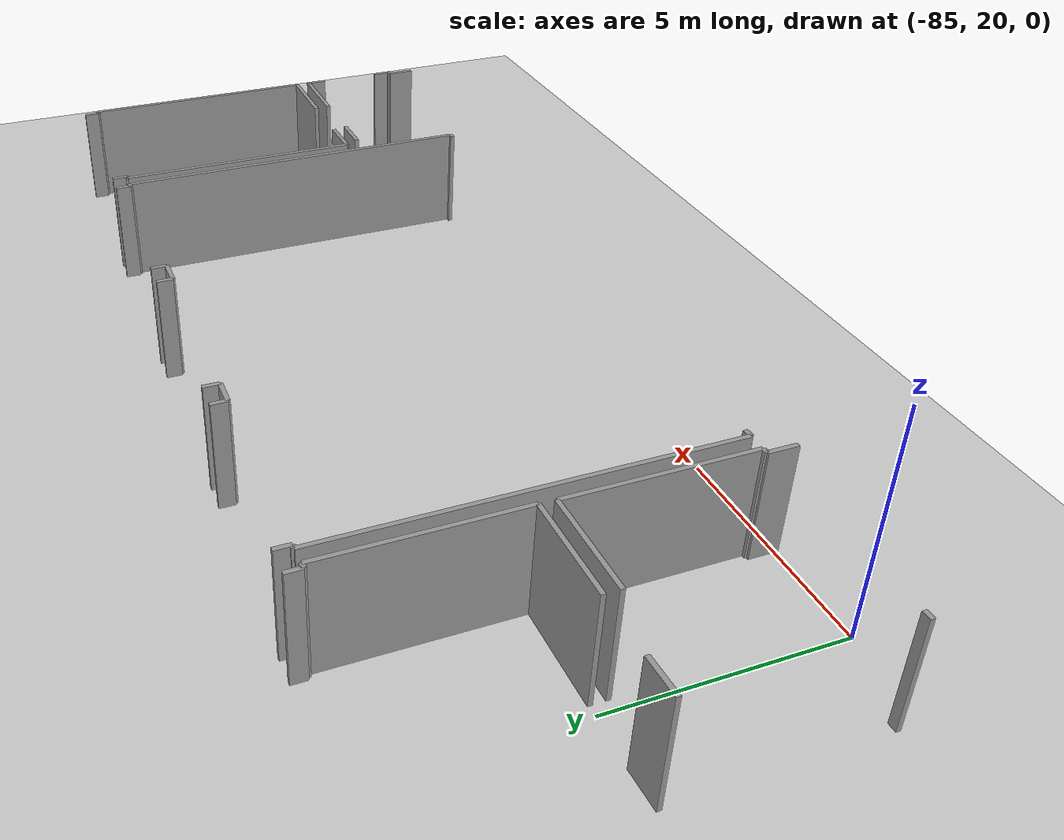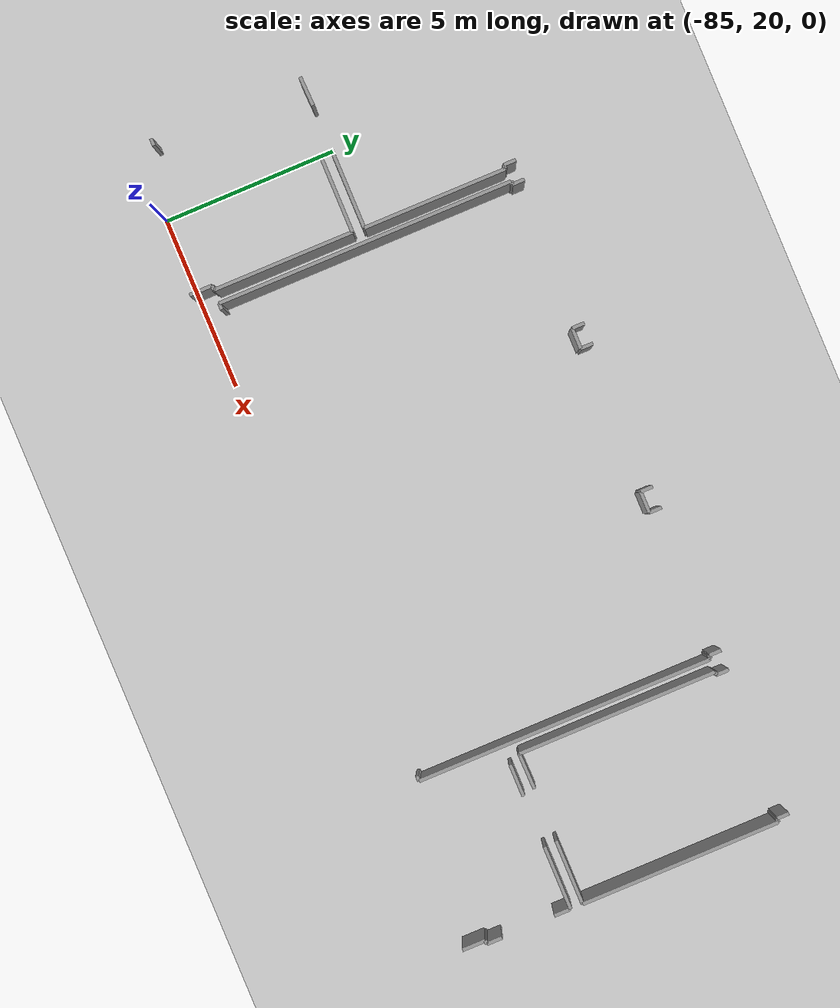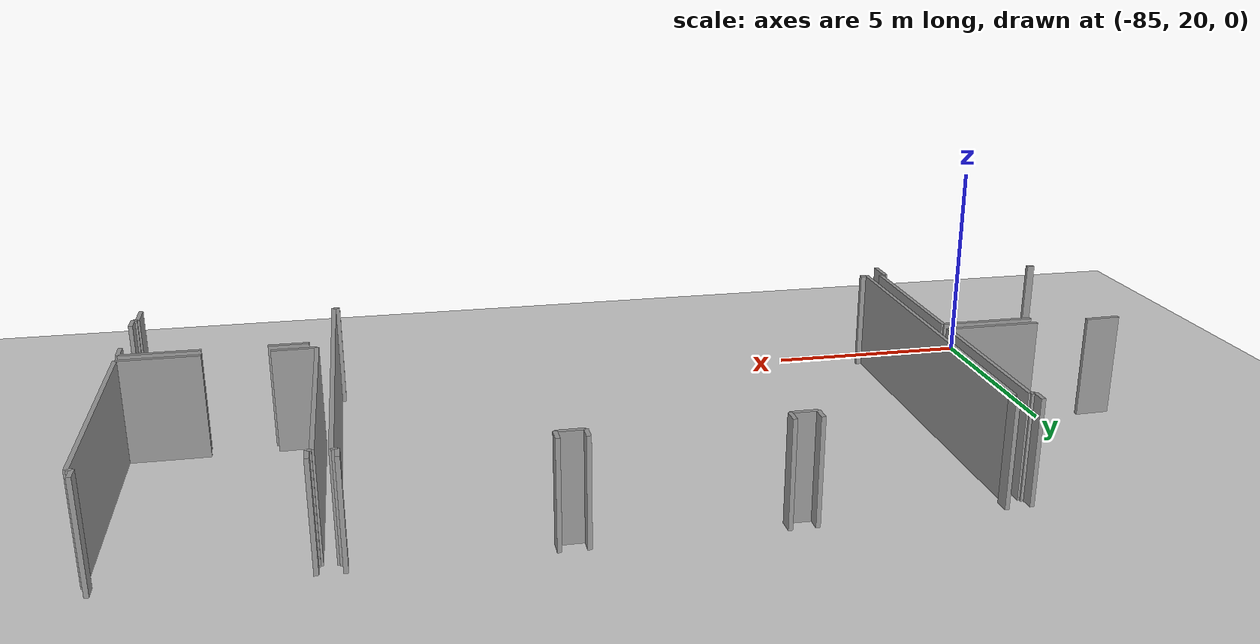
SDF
<sdf version="1.6">
 <world name="default">
  <model name="ground_plane">
   <static>1</static>
   <link name="link">
    <collision name="collision">
     <geometry><plane><normal>0 0 1</normal><size>100 100</size></plane></geometry>
     <surface><friction><ode><mu>100</mu><mu2>50</mu2></ode></friction></surface>
    </collision>
    <visual name="visual">
     <cast_shadows>0</cast_shadows>
     <geometry><plane><normal>0 0 1</normal><size>100 100</size></plane></geometry>
     <material>
      <script><uri>file://media/materials/scripts/gazebo.material</uri><name>Gazebo/Grey</name></script>
     </material>
    </visual>
   </link>
  </model>
  <model name="50010535_PLAN1">
   <static>1</static>
   <link name="Wall_30">
    <collision name="Wall_30_Collision">
     <geometry><box><size>0.348913298984 0.1 2.5</size></box></geometry>
     <pose>0.174456649492 0 1.25 0 0 0</pose>
    </collision>
    <visual name="Wall_30_Visual">
     <pose>0.174456649492 0 1.25 0 0 0</pose>
     <geometry><box><size>0.348913298984 0.1 2.5</size></box></geometry>
     <material>
      <script><uri>file://media/materials/scripts/gazebo.material</uri><name>Gazebo/Grey</name></script>
      <ambient>1 1 1 1</ambient>
     </material>
    </visual>
    <pose>20.00266831 -0.0312573457939 0 0 0 -1.57079632679</pose>
   </link>
   <link name="Wall_31">
    <collision name="Wall_31_Collision">
     <geometry><box><size>0.116389141249 0.1 2.5</size></box></geometry>
     <pose>0.0581945706244 0 1.25 0 0 0</pose>
    </collision>
    <visual name="Wall_31_Visual">
     <pose>0.0581945706244 0 1.25 0 0 0</pose>
     <geometry><box><size>0.116389141249 0.1 2.5</size></box></geometry>
     <material>
      <script><uri>file://media/materials/scripts/gazebo.material</uri><name>Gazebo/Grey</name></script>
      <ambient>1 1 1 1</ambient>
     </material>
    </visual>
    <pose>20.00266831 -0.380170644778 0 0 0 0.0</pose>
   </link>
   <link name="Wall_32">
    <collision name="Wall_32_Collision">
     <geometry><box><size>4.15061974676 0.1 2.5</size></box></geometry>
     <pose>2.07530987338 0 1.25 0 0 0</pose>
    </collision>
    <visual name="Wall_32_Visual">
     <pose>2.07530987338 0 1.25 0 0 0</pose>
     <geometry><box><size>4.15061974676 0.1 2.5</size></box></geometry>
     <material>
      <script><uri>file://media/materials/scripts/gazebo.material</uri><name>Gazebo/Grey</name></script>
      <ambient>1 1 1 1</ambient>
     </material>
    </visual>
    <pose>20.1190574513 -0.380170644778 0 0 0 -1.57079632679</pose>
   </link>
   <link name="Wall_33">
    <collision name="Wall_33_Collision">
     <geometry><box><size>2.28280274201 0.1 2.5</size></box></geometry>
     <pose>1.141401371 0 1.25 0 0 0</pose>
    </collision>
    <visual name="Wall_33_Visual">
     <pose>1.141401371 0 1.25 0 0 0</pose>
     <geometry><box><size>2.28280274201 0.1 2.5</size></box></geometry>
     <material>
      <script><uri>file://media/materials/scripts/gazebo.material</uri><name>Gazebo/Grey</name></script>
      <ambient>1 1 1 1</ambient>
     </material>
    </visual>
    <pose>20.1190574513 -4.53079039154 0 0 0 3.14159265359</pose>
   </link>
   <link name="Wall_34">
    <collision name="Wall_34_Collision">
     <geometry><box><size>0.848680073145 0.1 2.5</size></box></geometry>
     <pose>0.424340036573 0 1.25 0 0 0</pose>
    </collision>
    <visual name="Wall_34_Visual">
     <pose>0.424340036573 0 1.25 0 0 0</pose>
     <geometry><box><size>0.848680073145 0.1 2.5</size></box></geometry>
     <material>
      <script><uri>file://media/materials/scripts/gazebo.material</uri><name>Gazebo/Grey</name></script>
      <ambient>1 1 1 1</ambient>
     </material>
    </visual>
    <pose>16.5231920611 -4.53079039154 0 0 0 -3.11044634803</pose>
   </link>
   <link name="Wall_35">
    <collision name="Wall_35_Collision">
     <geometry><box><size>8.58331797996 0.1 2.5</size></box></geometry>
     <pose>4.29165898998 0 1.25 0 0 0</pose>
    </collision>
    <visual name="Wall_35_Visual">
     <pose>4.29165898998 0 1.25 0 0 0</pose>
     <geometry><box><size>8.58331797996 0.1 2.5</size></box></geometry>
     <material>
      <script><uri>file://media/materials/scripts/gazebo.material</uri><name>Gazebo/Grey</name></script>
      <ambient>1 1 1 1</ambient>
     </material>
    </visual>
    <pose>20.4870301074 -8.95078238661 0 0 0 1.57079632679</pose>
   </link>
   <link name="Wall_36">
    <collision name="Wall_36_Collision">
     <geometry><box><size>0.0930096630941 0.1 2.5</size></box></geometry>
     <pose>0.046504831547 0 1.25 0 0 0</pose>
    </collision>
    <visual name="Wall_36_Visual">
     <pose>0.046504831547 0 1.25 0 0 0</pose>
     <geometry><box><size>0.0930096630941 0.1 2.5</size></box></geometry>
     <material>
      <script><uri>file://media/materials/scripts/gazebo.material</uri><name>Gazebo/Grey</name></script>
      <ambient>1 1 1 1</ambient>
     </material>
    </visual>
    <pose>20.4870301074 -0.36746440665 0 0 0 0.0</pose>
   </link>
   <link name="Wall_37">
    <collision name="Wall_37_Collision">
     <geometry><box><size>0.346880300884 0.1 2.5</size></box></geometry>
     <pose>0.173440150442 0 1.25 0 0 0</pose>
    </collision>
    <visual name="Wall_37_Visual">
     <pose>0.173440150442 0 1.25 0 0 0</pose>
     <geometry><box><size>0.346880300884 0.1 2.5</size></box></geometry>
     <material>
      <script><uri>file://media/materials/scripts/gazebo.material</uri><name>Gazebo/Grey</name></script>
      <ambient>1 1 1 1</ambient>
     </material>
    </visual>
    <pose>20.5800397705 -0.36746440665 0 0 0 1.57079632679</pose>
   </link>
   <link name="Wall_38">
    <collision name="Wall_38_Collision">
     <geometry><box><size>0.358061790436 0.1 2.5</size></box></geometry>
     <pose>0.179030895218 0 1.25 0 0 0</pose>
    </collision>
    <visual name="Wall_38_Visual">
     <pose>0.179030895218 0 1.25 0 0 0</pose>
     <geometry><box><size>0.358061790436 0.1 2.5</size></box></geometry>
     <material>
      <script><uri>file://media/materials/scripts/gazebo.material</uri><name>Gazebo/Grey</name></script>
      <ambient>1 1 1 1</ambient>
     </material>
    </visual>
    <pose>24.8023227003 -0.0205841057667 0 0 0 -1.57079632679</pose>
   </link>
   <link name="Wall_39">
    <collision name="Wall_39_Collision">
     <geometry><box><size>0.596939067235 0.1 2.5</size></box></geometry>
     <pose>0.298469533618 0 1.25 0 0 0</pose>
    </collision>
    <visual name="Wall_39_Visual">
     <pose>0.298469533618 0 1.25 0 0 0</pose>
     <geometry><box><size>0.596939067235 0.1 2.5</size></box></geometry>
     <material>
      <script><uri>file://media/materials/scripts/gazebo.material</uri><name>Gazebo/Grey</name></script>
      <ambient>1 1 1 1</ambient>
     </material>
    </visual>
    <pose>24.8023227003 -0.378645896203 0 0 0 0.0</pose>
   </link>
   <link name="Wall_40">
    <collision name="Wall_40_Collision">
     <geometry><box><size>0.358061790436 0.1 2.5</size></box></geometry>
     <pose>0.179030895218 0 1.25 0 0 0</pose>
    </collision>
    <visual name="Wall_40_Visual">
     <pose>0.179030895218 0 1.25 0 0 0</pose>
     <geometry><box><size>0.358061790436 0.1 2.5</size></box></geometry>
     <material>
      <script><uri>file://media/materials/scripts/gazebo.material</uri><name>Gazebo/Grey</name></script>
      <ambient>1 1 1 1</ambient>
     </material>
    </visual>
    <pose>25.3992617676 -0.378645896203 0 0 0 1.57079632679</pose>
   </link>
   <link name="Wall_41">
    <collision name="Wall_41_Collision">
     <geometry><box><size>0.358061790436 0.1 2.5</size></box></geometry>
     <pose>0.179030895218 0 1.25 0 0 0</pose>
    </collision>
    <visual name="Wall_41_Visual">
     <pose>0.179030895218 0 1.25 0 0 0</pose>
     <geometry><box><size>0.358061790436 0.1 2.5</size></box></geometry>
     <material>
      <script><uri>file://media/materials/scripts/gazebo.material</uri><name>Gazebo/Grey</name></script>
      <ambient>1 1 1 1</ambient>
     </material>
    </visual>
    <pose>29.6014688411 -0.0205841057667 0 0 0 -1.57079632679</pose>
   </link>
   <link name="Wall_42">
    <collision name="Wall_42_Collision">
     <geometry><box><size>0.615744299664 0.1 2.5</size></box></geometry>
     <pose>0.307872149832 0 1.25 0 0 0</pose>
    </collision>
    <visual name="Wall_42_Visual">
     <pose>0.307872149832 0 1.25 0 0 0</pose>
     <geometry><box><size>0.615744299664 0.1 2.5</size></box></geometry>
     <material>
      <script><uri>file://media/materials/scripts/gazebo.material</uri><name>Gazebo/Grey</name></script>
      <ambient>1 1 1 1</ambient>
     </material>
    </visual>
    <pose>29.6014688411 -0.378645896203 0 0 0 0.0</pose>
   </link>
   <link name="Wall_43">
    <collision name="Wall_43_Collision">
     <geometry><box><size>0.358061790436 0.1 2.5</size></box></geometry>
     <pose>0.179030895218 0 1.25 0 0 0</pose>
    </collision>
    <visual name="Wall_43_Visual">
     <pose>0.179030895218 0 1.25 0 0 0</pose>
     <geometry><box><size>0.358061790436 0.1 2.5</size></box></geometry>
     <material>
      <script><uri>file://media/materials/scripts/gazebo.material</uri><name>Gazebo/Grey</name></script>
      <ambient>1 1 1 1</ambient>
     </material>
    </visual>
    <pose>30.2172131408 -0.378645896203 0 0 0 1.57079632679</pose>
   </link>
   <link name="Wall_44">
    <collision name="Wall_44_Collision">
     <geometry><box><size>0.35348754471 0.1 2.5</size></box></geometry>
     <pose>0.176743772355 0 1.25 0 0 0</pose>
    </collision>
    <visual name="Wall_44_Visual">
     <pose>0.176743772355 0 1.25 0 0 0</pose>
     <geometry><box><size>0.35348754471 0.1 2.5</size></box></geometry>
     <material>
      <script><uri>file://media/materials/scripts/gazebo.material</uri><name>Gazebo/Grey</name></script>
      <ambient>1 1 1 1</ambient>
     </material>
    </visual>
    <pose>34.4092552239 -0.0205841057667 0 0 0 -1.57079632679</pose>
   </link>
   <link name="Wall_45">
    <collision name="Wall_45_Collision">
     <geometry><box><size>0.114610267911 0.1 2.5</size></box></geometry>
     <pose>0.0573051339555 0 1.25 0 0 0</pose>
    </collision>
    <visual name="Wall_45_Visual">
     <pose>0.0573051339555 0 1.25 0 0 0</pose>
     <geometry><box><size>0.114610267911 0.1 2.5</size></box></geometry>
     <material>
      <script><uri>file://media/materials/scripts/gazebo.material</uri><name>Gazebo/Grey</name></script>
      <ambient>1 1 1 1</ambient>
     </material>
    </visual>
    <pose>34.4092552239 -0.374071650477 0 0 0 0.0</pose>
   </link>
   <link name="Wall_46">
    <collision name="Wall_46_Collision">
     <geometry><box><size>8.56807049421 0.1 2.5</size></box></geometry>
     <pose>4.2840352471 0 1.25 0 0 0</pose>
    </collision>
    <visual name="Wall_46_Visual">
     <pose>4.2840352471 0 1.25 0 0 0</pose>
     <geometry><box><size>8.56807049421 0.1 2.5</size></box></geometry>
     <material>
      <script><uri>file://media/materials/scripts/gazebo.material</uri><name>Gazebo/Grey</name></script>
      <ambient>1 1 1 1</ambient>
     </material>
    </visual>
    <pose>34.5238654918 -0.374071650477 0 0 0 -1.57079632679</pose>
   </link>
   <link name="Wall_47">
    <collision name="Wall_47_Collision">
     <geometry><box><size>0.14637586323 0.1 2.5</size></box></geometry>
     <pose>0.073187931615 0 1.25 0 0 0</pose>
    </collision>
    <visual name="Wall_47_Visual">
     <pose>0.073187931615 0 1.25 0 0 0</pose>
     <geometry><box><size>0.14637586323 0.1 2.5</size></box></geometry>
     <material>
      <script><uri>file://media/materials/scripts/gazebo.material</uri><name>Gazebo/Grey</name></script>
      <ambient>1 1 1 1</ambient>
     </material>
    </visual>
    <pose>34.5238654918 -8.94214214469 0 0 0 3.14159265359</pose>
   </link>
   <link name="Wall_48">
    <collision name="Wall_48_Collision">
     <geometry><box><size>0.184696786515 0.1 2.5</size></box></geometry>
     <pose>0.0923483932577 0 1.25 0 0 0</pose>
    </collision>
    <visual name="Wall_48_Visual">
     <pose>0.0923483932577 0 1.25 0 0 0</pose>
     <geometry><box><size>0.184696786515 0.1 2.5</size></box></geometry>
     <material>
      <script><uri>file://media/materials/scripts/gazebo.material</uri><name>Gazebo/Grey</name></script>
      <ambient>1 1 1 1</ambient>
     </material>
    </visual>
    <pose>20.671524685 -8.94214214469 0 0 0 -3.09479489047</pose>
   </link>
   <link name="Wall_49">
    <collision name="Wall_49_Collision">
     <geometry><box><size>5.75236812513 0.1 2.5</size></box></geometry>
     <pose>2.87618406257 0 1.25 0 0 0</pose>
    </collision>
    <visual name="Wall_49_Visual">
     <pose>2.87618406257 0 1.25 0 0 0</pose>
     <geometry><box><size>5.75236812513 0.1 2.5</size></box></geometry>
     <material>
      <script><uri>file://media/materials/scripts/gazebo.material</uri><name>Gazebo/Grey</name></script>
      <ambient>1 1 1 1</ambient>
     </material>
    </visual>
    <pose>34.8895510251 -6.1536311252 0 0 0 1.57079632679</pose>
   </link>
   <link name="Wall_50">
    <collision name="Wall_50_Collision">
     <geometry><box><size>0.0876730430805 0.1 2.5</size></box></geometry>
     <pose>0.0438365215402 0 1.25 0 0 0</pose>
    </collision>
    <visual name="Wall_50_Visual">
     <pose>0.0438365215402 0 1.25 0 0 0</pose>
     <geometry><box><size>0.0876730430805 0.1 2.5</size></box></geometry>
     <material>
      <script><uri>file://media/materials/scripts/gazebo.material</uri><name>Gazebo/Grey</name></script>
      <ambient>1 1 1 1</ambient>
     </material>
    </visual>
    <pose>34.8895510251 -0.40126300007 0 0 0 0.0</pose>
   </link>
   <link name="Wall_51">
    <collision name="Wall_51_Collision">
     <geometry><box><size>0.365939658075 0.1 2.5</size></box></geometry>
     <pose>0.182969829038 0 1.25 0 0 0</pose>
    </collision>
    <visual name="Wall_51_Visual">
     <pose>0.182969829038 0 1.25 0 0 0</pose>
     <geometry><box><size>0.365939658075 0.1 2.5</size></box></geometry>
     <material>
      <script><uri>file://media/materials/scripts/gazebo.material</uri><name>Gazebo/Grey</name></script>
      <ambient>1 1 1 1</ambient>
     </material>
    </visual>
    <pose>34.9772240682 -0.40126300007 0 0 0 1.57079632679</pose>
   </link>
   <link name="Wall_52">
    <collision name="Wall_52_Collision">
     <geometry><box><size>0.349421548509 0.1 2.5</size></box></geometry>
     <pose>0.174710774255 0 1.25 0 0 0</pose>
    </collision>
    <visual name="Wall_52_Visual">
     <pose>0.174710774255 0 1.25 0 0 0</pose>
     <geometry><box><size>0.349421548509 0.1 2.5</size></box></geometry>
     <material>
      <script><uri>file://media/materials/scripts/gazebo.material</uri><name>Gazebo/Grey</name></script>
      <ambient>1 1 1 1</ambient>
     </material>
    </visual>
    <pose>39.2000152475 -0.0353233419948 0 0 0 -1.57079632679</pose>
   </link>
   <link name="Wall_53">
    <collision name="Wall_53_Collision">
     <geometry><box><size>0.109273647897 0.1 2.5</size></box></geometry>
     <pose>0.0546368239487 0 1.25 0 0 0</pose>
    </collision>
    <visual name="Wall_53_Visual">
     <pose>0.0546368239487 0 1.25 0 0 0</pose>
     <geometry><box><size>0.109273647897 0.1 2.5</size></box></geometry>
     <material>
      <script><uri>file://media/materials/scripts/gazebo.material</uri><name>Gazebo/Grey</name></script>
      <ambient>1 1 1 1</ambient>
     </material>
    </visual>
    <pose>39.2000152475 -0.384744890504 0 0 0 0.0</pose>
   </link>
   <link name="Wall_54">
    <collision name="Wall_54_Collision">
     <geometry><box><size>5.75389287371 0.1 2.5</size></box></geometry>
     <pose>2.87694643685 0 1.25 0 0 0</pose>
    </collision>
    <visual name="Wall_54_Visual">
     <pose>2.87694643685 0 1.25 0 0 0</pose>
     <geometry><box><size>5.75389287371 0.1 2.5</size></box></geometry>
     <material>
      <script><uri>file://media/materials/scripts/gazebo.material</uri><name>Gazebo/Grey</name></script>
      <ambient>1 1 1 1</ambient>
     </material>
    </visual>
    <pose>39.3092888954 -0.384744890504 0 0 0 -1.57079632679</pose>
   </link>
   <link name="Wall_55">
    <collision name="Wall_55_Collision">
     <geometry><box><size>1.86044738664 0.1 2.5</size></box></geometry>
     <pose>0.930223693322 0 1.25 0 0 0</pose>
    </collision>
    <visual name="Wall_55_Visual">
     <pose>0.930223693322 0 1.25 0 0 0</pose>
     <geometry><box><size>1.86044738664 0.1 2.5</size></box></geometry>
     <material>
      <script><uri>file://media/materials/scripts/gazebo.material</uri><name>Gazebo/Grey</name></script>
      <ambient>1 1 1 1</ambient>
     </material>
    </visual>
    <pose>39.3092888954 -6.13863776421 0 0 0 3.14159265359</pose>
   </link>
   <link name="Wall_56">
    <collision name="Wall_56_Collision">
     <geometry><box><size>1.03388825601 0.1 2.5</size></box></geometry>
     <pose>0.516944128006 0 1.25 0 0 0</pose>
    </collision>
    <visual name="Wall_56_Visual">
     <pose>0.516944128006 0 1.25 0 0 0</pose>
     <geometry><box><size>1.03388825601 0.1 2.5</size></box></geometry>
     <material>
      <script><uri>file://media/materials/scripts/gazebo.material</uri><name>Gazebo/Grey</name></script>
      <ambient>1 1 1 1</ambient>
     </material>
    </visual>
    <pose>35.9233305591 -6.13863776421 0 0 0 -3.1270902289</pose>
   </link>
   <link name="Wall_86">
    <collision name="Wall_86_Collision">
     <geometry><box><size>0.199742063366 0.1 2.5</size></box></geometry>
     <pose>0.099871031683 0 1.25 0 0 0</pose>
    </collision>
    <visual name="Wall_86_Visual">
     <pose>0.099871031683 0 1.25 0 0 0</pose>
     <geometry><box><size>0.199742063366 0.1 2.5</size></box></geometry>
     <material>
      <script><uri>file://media/materials/scripts/gazebo.material</uri><name>Gazebo/Grey</name></script>
      <ambient>1 1 1 1</ambient>
     </material>
    </visual>
    <pose>15.8599264309 -8.92969003132 0 0 0 3.14159265359</pose>
   </link>
   <link name="Wall_89">
    <collision name="Wall_89_Collision">
     <geometry><box><size>2.26425163434 0.1 2.5</size></box></geometry>
     <pose>1.13212581717 0 1.25 0 0 0</pose>
    </collision>
    <visual name="Wall_89_Visual">
     <pose>1.13212581717 0 1.25 0 0 0</pose>
     <geometry><box><size>2.26425163434 0.1 2.5</size></box></geometry>
     <material>
      <script><uri>file://media/materials/scripts/gazebo.material</uri><name>Gazebo/Grey</name></script>
      <ambient>1 1 1 1</ambient>
     </material>
    </visual>
    <pose>17.8360005845 -4.87055519907 0 0 0 0.0</pose>
   </link>
   <link name="Wall_90">
    <collision name="Wall_90_Collision">
     <geometry><box><size>4.06853744846 0.1 2.5</size></box></geometry>
     <pose>2.03426872423 0 1.25 0 0 0</pose>
    </collision>
    <visual name="Wall_90_Visual">
     <pose>2.03426872423 0 1.25 0 0 0</pose>
     <geometry><box><size>4.06853744846 0.1 2.5</size></box></geometry>
     <material>
      <script><uri>file://media/materials/scripts/gazebo.material</uri><name>Gazebo/Grey</name></script>
      <ambient>1 1 1 1</ambient>
     </material>
    </visual>
    <pose>20.1002522188 -4.87055519907 0 0 0 -1.57079632679</pose>
   </link>
   <link name="Wall_91">
    <collision name="Wall_91_Collision">
     <geometry><box><size>0.127316506039 0.1 2.5</size></box></geometry>
     <pose>0.0636582530193 0 1.25 0 0 0</pose>
    </collision>
    <visual name="Wall_91_Visual">
     <pose>0.0636582530193 0 1.25 0 0 0</pose>
     <geometry><box><size>0.127316506039 0.1 2.5</size></box></geometry>
     <material>
      <script><uri>file://media/materials/scripts/gazebo.material</uri><name>Gazebo/Grey</name></script>
      <ambient>1 1 1 1</ambient>
     </material>
    </visual>
    <pose>20.1002522188 -8.93909264754 0 0 0 3.14159265359</pose>
   </link>
   <link name="Wall_92">
    <collision name="Wall_92_Collision">
     <geometry><box><size>0.660216133111 0.1 2.5</size></box></geometry>
     <pose>0.330108066555 0 1.25 0 0 0</pose>
    </collision>
    <visual name="Wall_92_Visual">
     <pose>0.330108066555 0 1.25 0 0 0</pose>
     <geometry><box><size>0.660216133111 0.1 2.5</size></box></geometry>
     <material>
      <script><uri>file://media/materials/scripts/gazebo.material</uri><name>Gazebo/Grey</name></script>
      <ambient>1 1 1 1</ambient>
     </material>
    </visual>
    <pose>19.9729357128 -8.93909264754 0 0 0 -1.57079632679</pose>
   </link>
   <link name="Wall_96">
    <collision name="Wall_96_Collision">
     <geometry><box><size>0.928571882366 0.1 2.5</size></box></geometry>
     <pose>0.464285941183 0 1.25 0 0 0</pose>
    </collision>
    <visual name="Wall_96_Visual">
     <pose>0.464285941183 0 1.25 0 0 0</pose>
     <geometry><box><size>0.928571882366 0.1 2.5</size></box></geometry>
     <material>
      <script><uri>file://media/materials/scripts/gazebo.material</uri><name>Gazebo/Grey</name></script>
      <ambient>1 1 1 1</ambient>
     </material>
    </visual>
    <pose>35.0676924836 -6.49060056035 0 0 0 0.0</pose>
   </link>
   <link name="Wall_97">
    <collision name="Wall_97_Collision">
     <geometry><box><size>1.82842766656 0.1 2.5</size></box></geometry>
     <pose>0.914213833281 0 1.25 0 0 0</pose>
    </collision>
    <visual name="Wall_97_Visual">
     <pose>0.914213833281 0 1.25 0 0 0</pose>
     <geometry><box><size>1.82842766656 0.1 2.5</size></box></geometry>
     <material>
      <script><uri>file://media/materials/scripts/gazebo.material</uri><name>Gazebo/Grey</name></script>
      <ambient>1 1 1 1</ambient>
     </material>
    </visual>
    <pose>37.4770493574 -6.49060056035 0 0 0 0.0</pose>
   </link>
   <link name="Wall_98">
    <collision name="Wall_98_Collision">
     <geometry><box><size>0.479279302173 0.1 2.5</size></box></geometry>
     <pose>0.239639651087 0 1.25 0 0 0</pose>
    </collision>
    <visual name="Wall_98_Visual">
     <pose>0.239639651087 0 1.25 0 0 0</pose>
     <geometry><box><size>0.479279302173 0.1 2.5</size></box></geometry>
     <material>
      <script><uri>file://media/materials/scripts/gazebo.material</uri><name>Gazebo/Grey</name></script>
      <ambient>1 1 1 1</ambient>
     </material>
    </visual>
    <pose>39.3054770239 -6.49060056035 0 0 0 -1.57079632679</pose>
   </link>
   <link name="Wall_99">
    <collision name="Wall_99_Collision">
     <geometry><box><size>0.45005495448 0.1 2.5</size></box></geometry>
     <pose>0.22502747724 0 1.25 0 0 0</pose>
    </collision>
    <visual name="Wall_99_Visual">
     <pose>0.22502747724 0 1.25 0 0 0</pose>
     <geometry><box><size>0.45005495448 0.1 2.5</size></box></geometry>
     <material>
      <script><uri>file://media/materials/scripts/gazebo.material</uri><name>Gazebo/Grey</name></script>
      <ambient>1 1 1 1</ambient>
     </material>
    </visual>
    <pose>39.3054770239 -8.50530167786 0 0 0 -1.57079632679</pose>
   </link>
   <link name="Wall_100">
    <collision name="Wall_100_Collision">
     <geometry><box><size>0.101395780258 0.1 2.5</size></box></geometry>
     <pose>0.0506978901292 0 1.25 0 0 0</pose>
    </collision>
    <visual name="Wall_100_Visual">
     <pose>0.0506978901292 0 1.25 0 0 0</pose>
     <geometry><box><size>0.101395780258 0.1 2.5</size></box></geometry>
     <material>
      <script><uri>file://media/materials/scripts/gazebo.material</uri><name>Gazebo/Grey</name></script>
      <ambient>1 1 1 1</ambient>
     </material>
    </visual>
    <pose>39.3054770239 -8.95535663234 0 0 0 3.14159265359</pose>
   </link>
   <link name="Wall_101">
    <collision name="Wall_101_Collision">
     <geometry><box><size>0.6691104998 0.1 2.5</size></box></geometry>
     <pose>0.3345552499 0 1.25 0 0 0</pose>
    </collision>
    <visual name="Wall_101_Visual">
     <pose>0.3345552499 0 1.25 0 0 0</pose>
     <geometry><box><size>0.6691104998 0.1 2.5</size></box></geometry>
     <material>
      <script><uri>file://media/materials/scripts/gazebo.material</uri><name>Gazebo/Grey</name></script>
      <ambient>1 1 1 1</ambient>
     </material>
    </visual>
    <pose>39.2040812437 -8.95535663234 0 0 0 -1.57079632679</pose>
   </link>
   <pose>-102.6 29.5103111122 0 0 0 0</pose>
  </model>
 </world>
</sdf>
